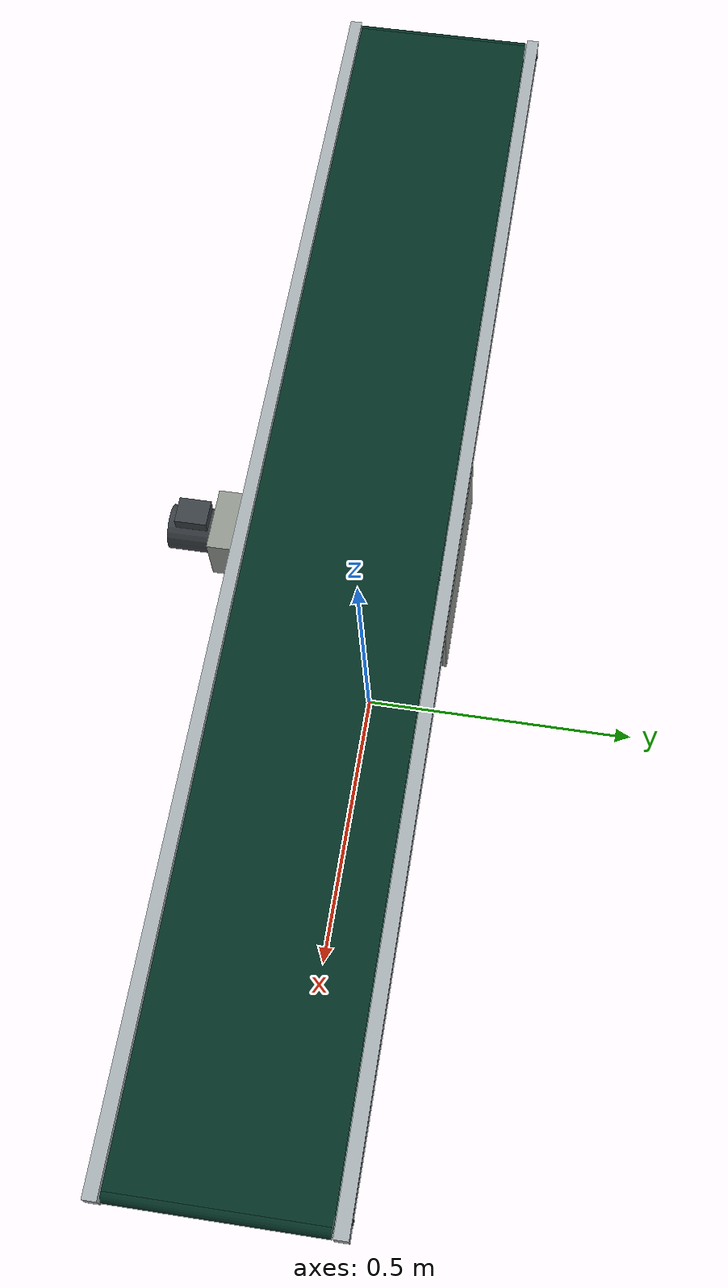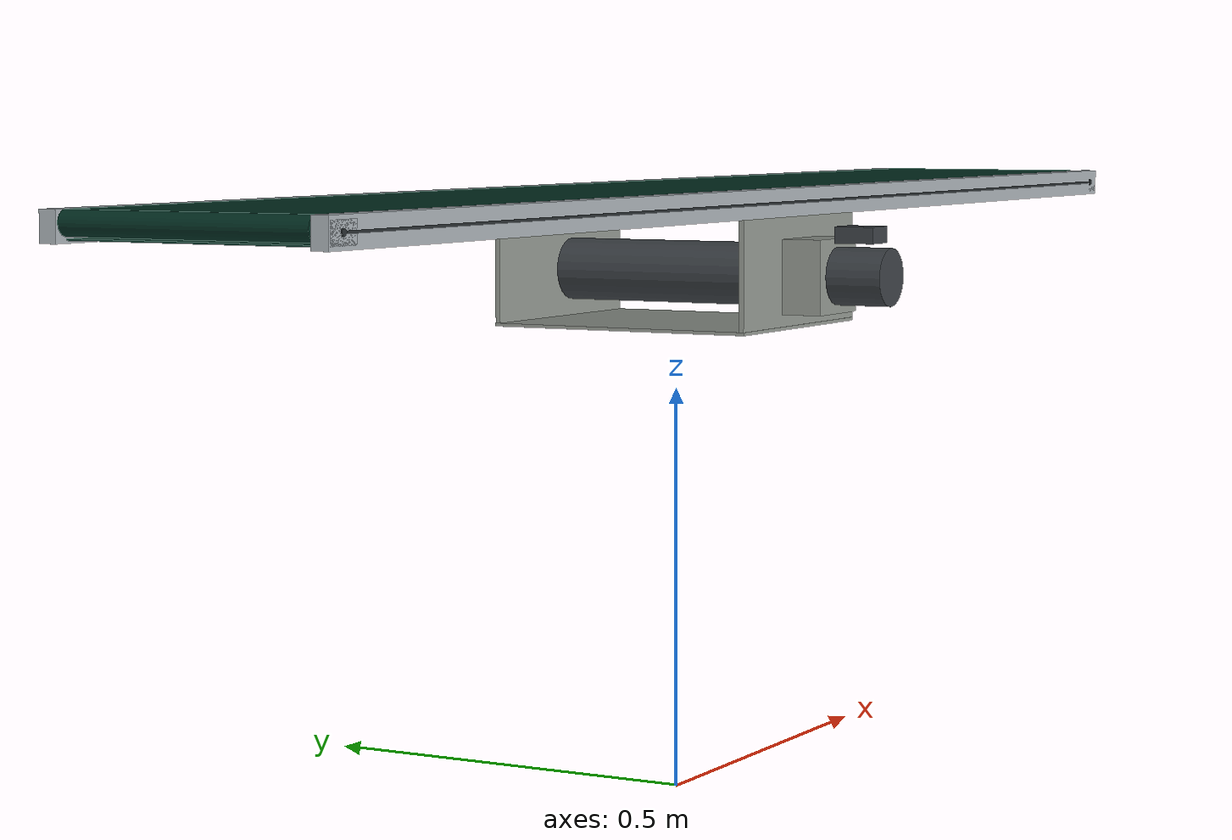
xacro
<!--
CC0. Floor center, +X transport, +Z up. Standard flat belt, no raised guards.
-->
<?xml version="1.0"?>
<robot xmlns:xacro="http://www.ros.org/wiki/xacro" name="belgotch-type34-s1-unit">
  <xacro:include filename="../../equipment-common/visual/primitives.xacro"/>
  <xacro:arg name="length" default="2.0"/><xacro:arg name="width" default="0.3"/>
  <xacro:arg name="height" default="0.75"/>
  <xacro:property name="l" value="$(arg length)"/><xacro:property name="w" value="$(arg width)"/>
  <xacro:property name="h" value="$(arg height)"/>
  <xacro:property name="bw" value="${w-(0.010 if l &gt; 4.0 or w &gt;= 0.5 else 0.005)}"/>
  <material name="aluminum"><color rgba="0.66 0.69 0.71 1"/></material>
  <material name="belt"><color rgba="0.015 0.19 0.14 1"/></material>
  <material name="slot"><color rgba="0.16 0.18 0.19 1"/></material>
  <material name="drive"><color rgba="0.57 0.59 0.56 1"/></material>
  <material name="motor"><color rgba="0.23 0.25 0.27 1"/></material>
  <link name="root"/>
  <xacro:box name="belt_top" size="${l-0.0272} ${bw} 0.002" xyz="0 0 ${h-0.001}" mat="belt"/>
  <xacro:box name="belt_return" size="${l-0.0272} ${bw} 0.002" xyz="0 0 ${h-0.030}" mat="belt"/>
  <xacro:macro name="side" params="s suffix">
    <xacro:box name="extrusion_${suffix}" size="${l} 0.02 0.034" xyz="0 ${s*(w/2+0.01)} ${h-0.017}" mat="aluminum"/>
    <xacro:box name="slot_${suffix}" size="${l-0.06} 0.0005 0.003" xyz="0 ${s*(w/2+0.020)} ${h-0.017}" mat="slot"/>
    <xacro:box name="drive_plate_${suffix}" size="0.30 0.006 0.135" xyz="0 ${s*(w/2+0.016)} ${h-0.1015}" mat="drive"/>
    <xacro:macro name="end" params="e code">
      <xacro:box name="end_plate_${suffix}_${code}" size="0.045 0.002 0.025" xyz="${e*(l/2-0.025)} ${s*(w/2+0.019)} ${h-0.017}" mat="aluminum"/>
      <xacro:cylinder name="adjuster_${suffix}_${code}" radius="0.004" length="0.003"
                      xyz="${e*(l/2-0.024)} ${s*(w/2+0.020)} ${h-0.017}" rpy="${pi/2} 0 0" mat="slot"/>
    </xacro:macro>
    <xacro:end e="-1" code="in"/><xacro:end e="1" code="out"/>
  </xacro:macro>
  <xacro:side s="-1" suffix="left"/><xacro:side s="1" suffix="right"/>
  <xacro:cylinder name="tail_pulley" radius="0.0136" length="${bw}" xyz="${-l/2+0.0136} 0 ${h-0.0136}" rpy="${pi/2} 0 0" mat="belt"/>
  <xacro:cylinder name="head_pulley" radius="0.0136" length="${bw}" xyz="${l/2-0.0136} 0 ${h-0.0136}" rpy="${pi/2} 0 0" mat="belt"/>
  <xacro:cylinder name="drive_pulley" radius="0.03815" length="${bw}" xyz="0 0 ${h-0.105}" rpy="${pi/2} 0 0" mat="motor"/>
  <xacro:box name="drive_guard" size="0.30 ${w+0.04} 0.004" xyz="0 0 ${h-0.167}" mat="drive"/>
  <xacro:box name="gearbox" size="0.10 0.05 0.09" xyz="0 ${-w/2-0.045} ${h-0.105}" mat="drive"/>
  <xacro:cylinder name="motor_can" radius="0.035" length="0.07" xyz="0 ${-w/2-0.105} ${h-0.105}" rpy="${pi/2} 0 0" mat="motor"/>
  <xacro:box name="motor_terminal" size="0.042 0.05 0.020" xyz="0 ${-w/2-0.10} ${h-0.055}" mat="motor"/>
  <!-- >6m includes a mid-tension unit. Housing dimensions/position are inferred. -->
  <xacro:if value="${l &gt; 6.0}">
    <xacro:box name="mid_tension" size="0.25 ${w+0.03} 0.10" xyz="${l/4} 0 ${h-0.084}" mat="drive"/>
  </xacro:if>
</robot>

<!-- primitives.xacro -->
<!-- CC0. Visual-only primitives, each with a stable removable resident name. -->
<robot xmlns:xacro="http://www.ros.org/wiki/xacro">
  <xacro:macro name="box" params="name size xyz mat">
    <link name="${name}"><visual><origin xyz="${xyz}"/>
      <geometry><box size="${size}"/></geometry><material name="${mat}"/>
    </visual></link>
    <joint name="j_${name}" type="fixed"><parent link="root"/><child link="${name}"/></joint>
  </xacro:macro>
  <xacro:macro name="cylinder" params="name radius length xyz rpy mat">
    <link name="${name}"><visual><origin xyz="${xyz}" rpy="${rpy}"/>
      <geometry><cylinder radius="${radius}" length="${length}"/></geometry><material name="${mat}"/>
    </visual></link>
    <joint name="j_${name}" type="fixed"><parent link="root"/><child link="${name}"/></joint>
  </xacro:macro>
  <xacro:macro name="mesh" params="name file xyz mat">
    <link name="${name}"><visual><origin xyz="${xyz}"/>
      <geometry><mesh filename="${file}"/></geometry><material name="${mat}"/>
    </visual></link>
    <joint name="j_${name}" type="fixed"><parent link="root"/><child link="${name}"/></joint>
  </xacro:macro>
</robot>
